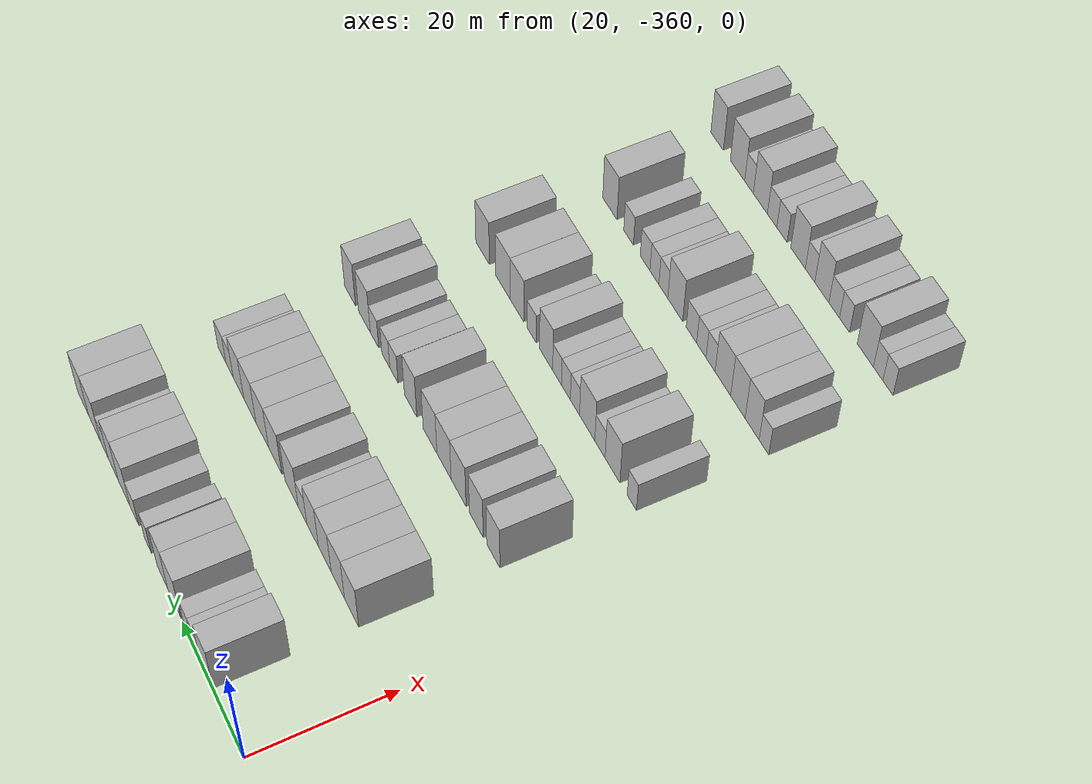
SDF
<sdf version="1.6">
 <world name="default">
  <model name="building_1">
   <static>1</static>
   <pose>25.0000 -347.9719 0 0.000000 0.000000 0.000000</pose>
   <link name="link">
    <pose>0 0 4.50 0 0 0</pose>
    <collision name="collision"><geometry><box><size>10.0000 4.0563 9.0000</size></box></geometry></collision>
    <visual name="visual">
     <cast_shadows>0</cast_shadows>
     <geometry><box><size>10.0000 4.0563 9.0000</size></box></geometry>
     <material>
      <script>
       <uri>model://HANNAS_wall/materials/scripts</uri>
       <uri>model://HANNAS_wall/materials/textures</uri>
       <name>vrc/HANNAS_wall</name>
      </script>
     </material>
    </visual>
   </link>
  </model>
  <model name="building_2">
   <static>1</static>
   <pose>25.0000 -344.5321 0 0.000000 0.000000 0.000000</pose>
   <link name="link">
    <pose>0 0 3.00 0 0 0</pose>
    <collision name="collision"><geometry><box><size>10.0000 2.8232 6.0000</size></box></geometry></collision>
    <visual name="visual">
     <cast_shadows>0</cast_shadows>
     <geometry><box><size>10.0000 2.8232 6.0000</size></box></geometry>
     <material>
      <script>
       <uri>model://HANNAS_wall/materials/scripts</uri>
       <uri>model://HANNAS_wall/materials/textures</uri>
       <name>vrc/HANNAS_wall</name>
      </script>
     </material>
    </visual>
   </link>
  </model>
  <model name="building_3">
   <static>1</static>
   <pose>25.0000 -341.8003 0 0.000000 0.000000 0.000000</pose>
   <link name="link">
    <pose>0 0 3.00 0 0 0</pose>
    <collision name="collision"><geometry><box><size>10.0000 2.6404 6.0000</size></box></geometry></collision>
    <visual name="visual">
     <cast_shadows>0</cast_shadows>
     <geometry><box><size>10.0000 2.6404 6.0000</size></box></geometry>
     <material>
      <script>
       <uri>model://HANNAS_wall/materials/scripts</uri>
       <uri>model://HANNAS_wall/materials/textures</uri>
       <name>vrc/HANNAS_wall</name>
      </script>
     </material>
    </visual>
   </link>
  </model>
  <model name="building_4">
   <static>1</static>
   <pose>25.0000 -337.2499 0 0.000000 0.000000 0.000000</pose>
   <link name="link">
    <pose>0 0 4.50 0 0 0</pose>
    <collision name="collision"><geometry><box><size>10.0000 4.4603 9.0000</size></box></geometry></collision>
    <visual name="visual">
     <cast_shadows>0</cast_shadows>
     <geometry><box><size>10.0000 4.4603 9.0000</size></box></geometry>
     <material>
      <script>
       <uri>model://HANNAS_wall/materials/scripts</uri>
       <uri>model://HANNAS_wall/materials/textures</uri>
       <name>vrc/HANNAS_wall</name>
      </script>
     </material>
    </visual>
   </link>
  </model>
  <model name="building_5">
   <static>1</static>
   <pose>25.0000 -333.1671 0 0.000000 0.000000 0.000000</pose>
   <link name="link">
    <pose>0 0 4.50 0 0 0</pose>
    <collision name="collision"><geometry><box><size>10.0000 3.7053 9.0000</size></box></geometry></collision>
    <visual name="visual">
     <cast_shadows>0</cast_shadows>
     <geometry><box><size>10.0000 3.7053 9.0000</size></box></geometry>
     <material>
      <script>
       <uri>model://HANNAS_wall/materials/scripts</uri>
       <uri>model://HANNAS_wall/materials/textures</uri>
       <name>vrc/HANNAS_wall</name>
      </script>
     </material>
    </visual>
   </link>
  </model>
  <model name="building_6">
   <static>1</static>
   <pose>25.0000 -328.1081 0 0.000000 0.000000 0.000000</pose>
   <link name="link">
    <pose>0 0 3.00 0 0 0</pose>
    <collision name="collision"><geometry><box><size>10.0000 2.4127 6.0000</size></box></geometry></collision>
    <visual name="visual">
     <cast_shadows>0</cast_shadows>
     <geometry><box><size>10.0000 2.4127 6.0000</size></box></geometry>
     <material>
      <script>
       <uri>model://HANNAS_wall/materials/scripts</uri>
       <uri>model://HANNAS_wall/materials/textures</uri>
       <name>vrc/HANNAS_wall</name>
      </script>
     </material>
    </visual>
   </link>
  </model>
  <model name="building_7">
   <static>1</static>
   <pose>25.0000 -323.4152 0 0.000000 0.000000 0.000000</pose>
   <link name="link">
    <pose>0 0 3.00 0 0 0</pose>
    <collision name="collision"><geometry><box><size>10.0000 2.9729 6.0000</size></box></geometry></collision>
    <visual name="visual">
     <cast_shadows>0</cast_shadows>
     <geometry><box><size>10.0000 2.9729 6.0000</size></box></geometry>
     <material>
      <script>
       <uri>model://HANNAS_wall/materials/scripts</uri>
       <uri>model://HANNAS_wall/materials/textures</uri>
       <name>vrc/HANNAS_wall</name>
      </script>
     </material>
    </visual>
   </link>
  </model>
  <model name="building_8">
   <static>1</static>
   <pose>25.0000 -319.7650 0 0.000000 0.000000 0.000000</pose>
   <link name="link">
    <pose>0 0 4.50 0 0 0</pose>
    <collision name="collision"><geometry><box><size>10.0000 4.3275 9.0000</size></box></geometry></collision>
    <visual name="visual">
     <cast_shadows>0</cast_shadows>
     <geometry><box><size>10.0000 4.3275 9.0000</size></box></geometry>
     <material>
      <script>
       <uri>model://HANNAS_wall/materials/scripts</uri>
       <uri>model://HANNAS_wall/materials/textures</uri>
       <name>vrc/HANNAS_wall</name>
      </script>
     </material>
    </visual>
   </link>
  </model>
  <model name="building_9">
   <static>1</static>
   <pose>25.0000 -315.7878 0 0.000000 0.000000 0.000000</pose>
   <link name="link">
    <pose>0 0 4.50 0 0 0</pose>
    <collision name="collision"><geometry><box><size>10.0000 3.6268 9.0000</size></box></geometry></collision>
    <visual name="visual">
     <cast_shadows>0</cast_shadows>
     <geometry><box><size>10.0000 3.6268 9.0000</size></box></geometry>
     <material>
      <script>
       <uri>model://HANNAS_wall/materials/scripts</uri>
       <uri>model://HANNAS_wall/materials/textures</uri>
       <name>vrc/HANNAS_wall</name>
      </script>
     </material>
    </visual>
   </link>
  </model>
  <model name="building_10">
   <static>1</static>
   <pose>25.0000 -312.5490 0 0.000000 0.000000 0.000000</pose>
   <link name="link">
    <pose>0 0 3.00 0 0 0</pose>
    <collision name="collision"><geometry><box><size>10.0000 2.8508 6.0000</size></box></geometry></collision>
    <visual name="visual">
     <cast_shadows>0</cast_shadows>
     <geometry><box><size>10.0000 2.8508 6.0000</size></box></geometry>
     <material>
      <script>
       <uri>model://HANNAS_wall/materials/scripts</uri>
       <uri>model://HANNAS_wall/materials/textures</uri>
       <name>vrc/HANNAS_wall</name>
      </script>
     </material>
    </visual>
   </link>
  </model>
  <model name="building_11">
   <static>1</static>
   <pose>25.0000 -308.8738 0 0.000000 0.000000 0.000000</pose>
   <link name="link">
    <pose>0 0 4.50 0 0 0</pose>
    <collision name="collision"><geometry><box><size>10.0000 4.4997 9.0000</size></box></geometry></collision>
    <visual name="visual">
     <cast_shadows>0</cast_shadows>
     <geometry><box><size>10.0000 4.4997 9.0000</size></box></geometry>
     <material>
      <script>
       <uri>model://HANNAS_wall/materials/scripts</uri>
       <uri>model://HANNAS_wall/materials/textures</uri>
       <name>vrc/HANNAS_wall</name>
      </script>
     </material>
    </visual>
   </link>
  </model>
  <model name="building_12">
   <static>1</static>
   <pose>25.0000 -304.5123 0 0.000000 0.000000 0.000000</pose>
   <link name="link">
    <pose>0 0 4.50 0 0 0</pose>
    <collision name="collision"><geometry><box><size>10.0000 4.2233 9.0000</size></box></geometry></collision>
    <visual name="visual">
     <cast_shadows>0</cast_shadows>
     <geometry><box><size>10.0000 4.2233 9.0000</size></box></geometry>
     <material>
      <script>
       <uri>model://HANNAS_wall/materials/scripts</uri>
       <uri>model://HANNAS_wall/materials/textures</uri>
       <name>vrc/HANNAS_wall</name>
      </script>
     </material>
    </visual>
   </link>
  </model>
  <model name="building_175">
   <static>1</static>
   <pose>44.0000 -347.8196 0 0.000000 0.000000 0.000000</pose>
   <link name="link">
    <pose>0 0 4.50 0 0 0</pose>
    <collision name="collision"><geometry><box><size>10.0000 4.3608 9.0000</size></box></geometry></collision>
    <visual name="visual">
     <cast_shadows>0</cast_shadows>
     <geometry><box><size>10.0000 4.3608 9.0000</size></box></geometry>
     <material>
      <script>
       <uri>model://HANNAS_wall/materials/scripts</uri>
       <uri>model://HANNAS_wall/materials/textures</uri>
       <name>vrc/HANNAS_wall</name>
      </script>
     </material>
    </visual>
   </link>
  </model>
  <model name="building_176">
   <static>1</static>
   <pose>44.0000 -343.5840 0 0.000000 0.000000 0.000000</pose>
   <link name="link">
    <pose>0 0 4.50 0 0 0</pose>
    <collision name="collision"><geometry><box><size>10.0000 4.1103 9.0000</size></box></geometry></collision>
    <visual name="visual">
     <cast_shadows>0</cast_shadows>
     <geometry><box><size>10.0000 4.1103 9.0000</size></box></geometry>
     <material>
      <script>
       <uri>model://HANNAS_wall/materials/scripts</uri>
       <uri>model://HANNAS_wall/materials/textures</uri>
       <name>vrc/HANNAS_wall</name>
      </script>
     </material>
    </visual>
   </link>
  </model>
  <model name="building_177">
   <static>1</static>
   <pose>44.0000 -339.5308 0 0.000000 0.000000 0.000000</pose>
   <link name="link">
    <pose>0 0 4.50 0 0 0</pose>
    <collision name="collision"><geometry><box><size>10.0000 3.9963 9.0000</size></box></geometry></collision>
    <visual name="visual">
     <cast_shadows>0</cast_shadows>
     <geometry><box><size>10.0000 3.9963 9.0000</size></box></geometry>
     <material>
      <script>
       <uri>model://HANNAS_wall/materials/scripts</uri>
       <uri>model://HANNAS_wall/materials/textures</uri>
       <name>vrc/HANNAS_wall</name>
      </script>
     </material>
    </visual>
   </link>
  </model>
  <model name="building_178">
   <static>1</static>
   <pose>44.0000 -335.6657 0 0.000000 0.000000 0.000000</pose>
   <link name="link">
    <pose>0 0 4.50 0 0 0</pose>
    <collision name="collision"><geometry><box><size>10.0000 3.7338 9.0000</size></box></geometry></collision>
    <visual name="visual">
     <cast_shadows>0</cast_shadows>
     <geometry><box><size>10.0000 3.7338 9.0000</size></box></geometry>
     <material>
      <script>
       <uri>model://HANNAS_wall/materials/scripts</uri>
       <uri>model://HANNAS_wall/materials/textures</uri>
       <name>vrc/HANNAS_wall</name>
      </script>
     </material>
    </visual>
   </link>
  </model>
  <model name="building_179">
   <static>1</static>
   <pose>44.0000 -332.4014 0 0.000000 0.000000 0.000000</pose>
   <link name="link">
    <pose>0 0 3.00 0 0 0</pose>
    <collision name="collision"><geometry><box><size>10.0000 2.7949 6.0000</size></box></geometry></collision>
    <visual name="visual">
     <cast_shadows>0</cast_shadows>
     <geometry><box><size>10.0000 2.7949 6.0000</size></box></geometry>
     <material>
      <script>
       <uri>model://HANNAS_wall/materials/scripts</uri>
       <uri>model://HANNAS_wall/materials/textures</uri>
       <name>vrc/HANNAS_wall</name>
      </script>
     </material>
    </visual>
   </link>
  </model>
  <model name="building_180">
   <static>1</static>
   <pose>44.0000 -328.8375 0 0.000000 0.000000 0.000000</pose>
   <link name="link">
    <pose>0 0 4.50 0 0 0</pose>
    <collision name="collision"><geometry><box><size>10.0000 4.3329 9.0000</size></box></geometry></collision>
    <visual name="visual">
     <cast_shadows>0</cast_shadows>
     <geometry><box><size>10.0000 4.3329 9.0000</size></box></geometry>
     <material>
      <script>
       <uri>model://HANNAS_wall/materials/scripts</uri>
       <uri>model://HANNAS_wall/materials/textures</uri>
       <name>vrc/HANNAS_wall</name>
      </script>
     </material>
    </visual>
   </link>
  </model>
  <model name="building_181">
   <static>1</static>
   <pose>44.0000 -323.4574 0 0.000000 0.000000 0.000000</pose>
   <link name="link">
    <pose>0 0 4.50 0 0 0</pose>
    <collision name="collision"><geometry><box><size>10.0000 4.4273 9.0000</size></box></geometry></collision>
    <visual name="visual">
     <cast_shadows>0</cast_shadows>
     <geometry><box><size>10.0000 4.4273 9.0000</size></box></geometry>
     <material>
      <script>
       <uri>model://HANNAS_wall/materials/scripts</uri>
       <uri>model://HANNAS_wall/materials/textures</uri>
       <name>vrc/HANNAS_wall</name>
      </script>
     </material>
    </visual>
   </link>
  </model>
  <model name="building_182">
   <static>1</static>
   <pose>44.0000 -319.1337 0 0.000000 0.000000 0.000000</pose>
   <link name="link">
    <pose>0 0 4.50 0 0 0</pose>
    <collision name="collision"><geometry><box><size>10.0000 4.2200 9.0000</size></box></geometry></collision>
    <visual name="visual">
     <cast_shadows>0</cast_shadows>
     <geometry><box><size>10.0000 4.2200 9.0000</size></box></geometry>
     <material>
      <script>
       <uri>model://HANNAS_wall/materials/scripts</uri>
       <uri>model://HANNAS_wall/materials/textures</uri>
       <name>vrc/HANNAS_wall</name>
      </script>
     </material>
    </visual>
   </link>
  </model>
  <model name="building_183">
   <static>1</static>
   <pose>44.0000 -314.9364 0 0.000000 0.000000 0.000000</pose>
   <link name="link">
    <pose>0 0 4.50 0 0 0</pose>
    <collision name="collision"><geometry><box><size>10.0000 4.1746 9.0000</size></box></geometry></collision>
    <visual name="visual">
     <cast_shadows>0</cast_shadows>
     <geometry><box><size>10.0000 4.1746 9.0000</size></box></geometry>
     <material>
      <script>
       <uri>model://HANNAS_wall/materials/scripts</uri>
       <uri>model://HANNAS_wall/materials/textures</uri>
       <name>vrc/HANNAS_wall</name>
      </script>
     </material>
    </visual>
   </link>
  </model>
  <model name="building_184">
   <static>1</static>
   <pose>44.0000 -311.0115 0 0.000000 0.000000 0.000000</pose>
   <link name="link">
    <pose>0 0 4.50 0 0 0</pose>
    <collision name="collision"><geometry><box><size>10.0000 3.6751 9.0000</size></box></geometry></collision>
    <visual name="visual">
     <cast_shadows>0</cast_shadows>
     <geometry><box><size>10.0000 3.6751 9.0000</size></box></geometry>
     <material>
      <script>
       <uri>model://HANNAS_wall/materials/scripts</uri>
       <uri>model://HANNAS_wall/materials/textures</uri>
       <name>vrc/HANNAS_wall</name>
      </script>
     </material>
    </visual>
   </link>
  </model>
  <model name="building_185">
   <static>1</static>
   <pose>44.0000 -307.9060 0 0.000000 0.000000 0.000000</pose>
   <link name="link">
    <pose>0 0 3.00 0 0 0</pose>
    <collision name="collision"><geometry><box><size>10.0000 2.5360 6.0000</size></box></geometry></collision>
    <visual name="visual">
     <cast_shadows>0</cast_shadows>
     <geometry><box><size>10.0000 2.5360 6.0000</size></box></geometry>
     <material>
      <script>
       <uri>model://HANNAS_wall/materials/scripts</uri>
       <uri>model://HANNAS_wall/materials/textures</uri>
       <name>vrc/HANNAS_wall</name>
      </script>
     </material>
    </visual>
   </link>
  </model>
  <model name="building_186">
   <static>1</static>
   <pose>44.0000 -305.2143 0 0.000000 0.000000 0.000000</pose>
   <link name="link">
    <pose>0 0 3.00 0 0 0</pose>
    <collision name="collision"><geometry><box><size>10.0000 2.8473 6.0000</size></box></geometry></collision>
    <visual name="visual">
     <cast_shadows>0</cast_shadows>
     <geometry><box><size>10.0000 2.8473 6.0000</size></box></geometry>
     <material>
      <script>
       <uri>model://HANNAS_wall/materials/scripts</uri>
       <uri>model://HANNAS_wall/materials/textures</uri>
       <name>vrc/HANNAS_wall</name>
      </script>
     </material>
    </visual>
   </link>
  </model>
  <model name="building_343">
   <static>1</static>
   <pose>63.0000 -348.0949 0 0.000000 0.000000 0.000000</pose>
   <link name="link">
    <pose>0 0 4.50 0 0 0</pose>
    <collision name="collision"><geometry><box><size>10.0000 3.8103 9.0000</size></box></geometry></collision>
    <visual name="visual">
     <cast_shadows>0</cast_shadows>
     <geometry><box><size>10.0000 3.8103 9.0000</size></box></geometry>
     <material>
      <script>
       <uri>model://HANNAS_wall/materials/scripts</uri>
       <uri>model://HANNAS_wall/materials/textures</uri>
       <name>vrc/HANNAS_wall</name>
      </script>
     </material>
    </visual>
   </link>
  </model>
  <model name="building_344">
   <static>1</static>
   <pose>63.0000 -343.1694 0 0.000000 0.000000 0.000000</pose>
   <link name="link">
    <pose>0 0 4.50 0 0 0</pose>
    <collision name="collision"><geometry><box><size>10.0000 4.0407 9.0000</size></box></geometry></collision>
    <visual name="visual">
     <cast_shadows>0</cast_shadows>
     <geometry><box><size>10.0000 4.0407 9.0000</size></box></geometry>
     <material>
      <script>
       <uri>model://HANNAS_wall/materials/scripts</uri>
       <uri>model://HANNAS_wall/materials/textures</uri>
       <name>vrc/HANNAS_wall</name>
      </script>
     </material>
    </visual>
   </link>
  </model>
  <model name="building_345">
   <static>1</static>
   <pose>63.0000 -337.9200 0 0.000000 0.000000 0.000000</pose>
   <link name="link">
    <pose>0 0 4.50 0 0 0</pose>
    <collision name="collision"><geometry><box><size>10.0000 4.4583 9.0000</size></box></geometry></collision>
    <visual name="visual">
     <cast_shadows>0</cast_shadows>
     <geometry><box><size>10.0000 4.4583 9.0000</size></box></geometry>
     <material>
      <script>
       <uri>model://HANNAS_wall/materials/scripts</uri>
       <uri>model://HANNAS_wall/materials/textures</uri>
       <name>vrc/HANNAS_wall</name>
      </script>
     </material>
    </visual>
   </link>
  </model>
  <model name="building_346">
   <static>1</static>
   <pose>63.0000 -333.5298 0 0.000000 0.000000 0.000000</pose>
   <link name="link">
    <pose>0 0 4.50 0 0 0</pose>
    <collision name="collision"><geometry><box><size>10.0000 4.3220 9.0000</size></box></geometry></collision>
    <visual name="visual">
     <cast_shadows>0</cast_shadows>
     <geometry><box><size>10.0000 4.3220 9.0000</size></box></geometry>
     <material>
      <script>
       <uri>model://HANNAS_wall/materials/scripts</uri>
       <uri>model://HANNAS_wall/materials/textures</uri>
       <name>vrc/HANNAS_wall</name>
      </script>
     </material>
    </visual>
   </link>
  </model>
  <model name="building_347">
   <static>1</static>
   <pose>63.0000 -329.2677 0 0.000000 0.000000 0.000000</pose>
   <link name="link">
    <pose>0 0 4.50 0 0 0</pose>
    <collision name="collision"><geometry><box><size>10.0000 4.2022 9.0000</size></box></geometry></collision>
    <visual name="visual">
     <cast_shadows>0</cast_shadows>
     <geometry><box><size>10.0000 4.2022 9.0000</size></box></geometry>
     <material>
      <script>
       <uri>model://HANNAS_wall/materials/scripts</uri>
       <uri>model://HANNAS_wall/materials/textures</uri>
       <name>vrc/HANNAS_wall</name>
      </script>
     </material>
    </visual>
   </link>
  </model>
  <model name="building_348">
   <static>1</static>
   <pose>63.0000 -323.2186 0 0.000000 0.000000 0.000000</pose>
   <link name="link">
    <pose>0 0 4.50 0 0 0</pose>
    <collision name="collision"><geometry><box><size>10.0000 3.8960 9.0000</size></box></geometry></collision>
    <visual name="visual">
     <cast_shadows>0</cast_shadows>
     <geometry><box><size>10.0000 3.8960 9.0000</size></box></geometry>
     <material>
      <script>
       <uri>model://HANNAS_wall/materials/scripts</uri>
       <uri>model://HANNAS_wall/materials/textures</uri>
       <name>vrc/HANNAS_wall</name>
      </script>
     </material>
    </visual>
   </link>
  </model>
  <model name="building_349">
   <static>1</static>
   <pose>63.0000 -317.9427 0 0.000000 0.000000 0.000000</pose>
   <link name="link">
    <pose>0 0 3.00 0 0 0</pose>
    <collision name="collision"><geometry><box><size>10.0000 2.6558 6.0000</size></box></geometry></collision>
    <visual name="visual">
     <cast_shadows>0</cast_shadows>
     <geometry><box><size>10.0000 2.6558 6.0000</size></box></geometry>
     <material>
      <script>
       <uri>model://HANNAS_wall/materials/scripts</uri>
       <uri>model://HANNAS_wall/materials/textures</uri>
       <name>vrc/HANNAS_wall</name>
      </script>
     </material>
    </visual>
   </link>
  </model>
  <model name="building_350">
   <static>1</static>
   <pose>63.0000 -315.3383 0 0.000000 0.000000 0.000000</pose>
   <link name="link">
    <pose>0 0 3.00 0 0 0</pose>
    <collision name="collision"><geometry><box><size>10.0000 2.5530 6.0000</size></box></geometry></collision>
    <visual name="visual">
     <cast_shadows>0</cast_shadows>
     <geometry><box><size>10.0000 2.5530 6.0000</size></box></geometry>
     <material>
      <script>
       <uri>model://HANNAS_wall/materials/scripts</uri>
       <uri>model://HANNAS_wall/materials/textures</uri>
       <name>vrc/HANNAS_wall</name>
      </script>
     </material>
    </visual>
   </link>
  </model>
  <model name="building_351">
   <static>1</static>
   <pose>63.0000 -311.6912 0 0.000000 0.000000 0.000000</pose>
   <link name="link">
    <pose>0 0 3.00 0 0 0</pose>
    <collision name="collision"><geometry><box><size>10.0000 2.7412 6.0000</size></box></geometry></collision>
    <visual name="visual">
     <cast_shadows>0</cast_shadows>
     <geometry><box><size>10.0000 2.7412 6.0000</size></box></geometry>
     <material>
      <script>
       <uri>model://HANNAS_wall/materials/scripts</uri>
       <uri>model://HANNAS_wall/materials/textures</uri>
       <name>vrc/HANNAS_wall</name>
      </script>
     </material>
    </visual>
   </link>
  </model>
  <model name="building_352">
   <static>1</static>
   <pose>63.0000 -308.3796 0 0.000000 0.000000 0.000000</pose>
   <link name="link">
    <pose>0 0 4.50 0 0 0</pose>
    <collision name="collision"><geometry><box><size>10.0000 3.8820 9.0000</size></box></geometry></collision>
    <visual name="visual">
     <cast_shadows>0</cast_shadows>
     <geometry><box><size>10.0000 3.8820 9.0000</size></box></geometry>
     <material>
      <script>
       <uri>model://HANNAS_wall/materials/scripts</uri>
       <uri>model://HANNAS_wall/materials/textures</uri>
       <name>vrc/HANNAS_wall</name>
      </script>
     </material>
    </visual>
   </link>
  </model>
  <model name="building_353">
   <static>1</static>
   <pose>63.0000 -303.6119 0 0.000000 0.000000 0.000000</pose>
   <link name="link">
    <pose>0 0 4.50 0 0 0</pose>
    <collision name="collision"><geometry><box><size>10.0000 3.6534 9.0000</size></box></geometry></collision>
    <visual name="visual">
     <cast_shadows>0</cast_shadows>
     <geometry><box><size>10.0000 3.6534 9.0000</size></box></geometry>
     <material>
      <script>
       <uri>model://HANNAS_wall/materials/scripts</uri>
       <uri>model://HANNAS_wall/materials/textures</uri>
       <name>vrc/HANNAS_wall</name>
      </script>
     </material>
    </visual>
   </link>
  </model>
  <model name="building_512">
   <static>1</static>
   <pose>82.0000 -348.7292 0 0.000000 0.000000 0.000000</pose>
   <link name="link">
    <pose>0 0 3.00 0 0 0</pose>
    <collision name="collision"><geometry><box><size>10.0000 2.5415 6.0000</size></box></geometry></collision>
    <visual name="visual">
     <cast_shadows>0</cast_shadows>
     <geometry><box><size>10.0000 2.5415 6.0000</size></box></geometry>
     <material>
      <script>
       <uri>model://HANNAS_wall/materials/scripts</uri>
       <uri>model://HANNAS_wall/materials/textures</uri>
       <name>vrc/HANNAS_wall</name>
      </script>
     </material>
    </visual>
   </link>
  </model>
  <model name="building_513">
   <static>1</static>
   <pose>82.0000 -343.3906 0 0.000000 0.000000 0.000000</pose>
   <link name="link">
    <pose>0 0 4.50 0 0 0</pose>
    <collision name="collision"><geometry><box><size>10.0000 4.1357 9.0000</size></box></geometry></collision>
    <visual name="visual">
     <cast_shadows>0</cast_shadows>
     <geometry><box><size>10.0000 4.1357 9.0000</size></box></geometry>
     <material>
      <script>
       <uri>model://HANNAS_wall/materials/scripts</uri>
       <uri>model://HANNAS_wall/materials/textures</uri>
       <name>vrc/HANNAS_wall</name>
      </script>
     </material>
    </visual>
   </link>
  </model>
  <model name="building_514">
   <static>1</static>
   <pose>82.0000 -339.8848 0 0.000000 0.000000 0.000000</pose>
   <link name="link">
    <pose>0 0 3.00 0 0 0</pose>
    <collision name="collision"><geometry><box><size>10.0000 2.8760 6.0000</size></box></geometry></collision>
    <visual name="visual">
     <cast_shadows>0</cast_shadows>
     <geometry><box><size>10.0000 2.8760 6.0000</size></box></geometry>
     <material>
      <script>
       <uri>model://HANNAS_wall/materials/scripts</uri>
       <uri>model://HANNAS_wall/materials/textures</uri>
       <name>vrc/HANNAS_wall</name>
      </script>
     </material>
    </visual>
   </link>
  </model>
  <model name="building_515">
   <static>1</static>
   <pose>82.0000 -336.2471 0 0.000000 0.000000 0.000000</pose>
   <link name="link">
    <pose>0 0 4.50 0 0 0</pose>
    <collision name="collision"><geometry><box><size>10.0000 4.3995 9.0000</size></box></geometry></collision>
    <visual name="visual">
     <cast_shadows>0</cast_shadows>
     <geometry><box><size>10.0000 4.3995 9.0000</size></box></geometry>
     <material>
      <script>
       <uri>model://HANNAS_wall/materials/scripts</uri>
       <uri>model://HANNAS_wall/materials/textures</uri>
       <name>vrc/HANNAS_wall</name>
      </script>
     </material>
    </visual>
   </link>
  </model>
  <model name="building_516">
   <static>1</static>
   <pose>82.0000 -332.7282 0 0.000000 0.000000 0.000000</pose>
   <link name="link">
    <pose>0 0 3.00 0 0 0</pose>
    <collision name="collision"><geometry><box><size>10.0000 2.6383 6.0000</size></box></geometry></collision>
    <visual name="visual">
     <cast_shadows>0</cast_shadows>
     <geometry><box><size>10.0000 2.6383 6.0000</size></box></geometry>
     <material>
      <script>
       <uri>model://HANNAS_wall/materials/scripts</uri>
       <uri>model://HANNAS_wall/materials/textures</uri>
       <name>vrc/HANNAS_wall</name>
      </script>
     </material>
    </visual>
   </link>
  </model>
  <model name="building_517">
   <static>1</static>
   <pose>82.0000 -330.1069 0 0.000000 0.000000 0.000000</pose>
   <link name="link">
    <pose>0 0 3.00 0 0 0</pose>
    <collision name="collision"><geometry><box><size>10.0000 2.6044 6.0000</size></box></geometry></collision>
    <visual name="visual">
     <cast_shadows>0</cast_shadows>
     <geometry><box><size>10.0000 2.6044 6.0000</size></box></geometry>
     <material>
      <script>
       <uri>model://HANNAS_wall/materials/scripts</uri>
       <uri>model://HANNAS_wall/materials/textures</uri>
       <name>vrc/HANNAS_wall</name>
      </script>
     </material>
    </visual>
   </link>
  </model>
  <model name="building_518">
   <static>1</static>
   <pose>82.0000 -327.5131 0 0.000000 0.000000 0.000000</pose>
   <link name="link">
    <pose>0 0 3.00 0 0 0</pose>
    <collision name="collision"><geometry><box><size>10.0000 2.5832 6.0000</size></box></geometry></collision>
    <visual name="visual">
     <cast_shadows>0</cast_shadows>
     <geometry><box><size>10.0000 2.5832 6.0000</size></box></geometry>
     <material>
      <script>
       <uri>model://HANNAS_wall/materials/scripts</uri>
       <uri>model://HANNAS_wall/materials/textures</uri>
       <name>vrc/HANNAS_wall</name>
      </script>
     </material>
    </visual>
   </link>
  </model>
  <model name="building_519">
   <static>1</static>
   <pose>82.0000 -324.2697 0 0.000000 0.000000 0.000000</pose>
   <link name="link">
    <pose>0 0 4.50 0 0 0</pose>
    <collision name="collision"><geometry><box><size>10.0000 3.9036 9.0000</size></box></geometry></collision>
    <visual name="visual">
     <cast_shadows>0</cast_shadows>
     <geometry><box><size>10.0000 3.9036 9.0000</size></box></geometry>
     <material>
      <script>
       <uri>model://HANNAS_wall/materials/scripts</uri>
       <uri>model://HANNAS_wall/materials/textures</uri>
       <name>vrc/HANNAS_wall</name>
      </script>
     </material>
    </visual>
   </link>
  </model>
  <model name="building_520">
   <static>1</static>
   <pose>82.0000 -319.9363 0 0.000000 0.000000 0.000000</pose>
   <link name="link">
    <pose>0 0 3.00 0 0 0</pose>
    <collision name="collision"><geometry><box><size>10.0000 2.7633 6.0000</size></box></geometry></collision>
    <visual name="visual">
     <cast_shadows>0</cast_shadows>
     <geometry><box><size>10.0000 2.7633 6.0000</size></box></geometry>
     <material>
      <script>
       <uri>model://HANNAS_wall/materials/scripts</uri>
       <uri>model://HANNAS_wall/materials/textures</uri>
       <name>vrc/HANNAS_wall</name>
      </script>
     </material>
    </visual>
   </link>
  </model>
  <model name="building_521">
   <static>1</static>
   <pose>82.0000 -315.4998 0 0.000000 0.000000 0.000000</pose>
   <link name="link">
    <pose>0 0 4.50 0 0 0</pose>
    <collision name="collision"><geometry><box><size>10.0000 4.1097 9.0000</size></box></geometry></collision>
    <visual name="visual">
     <cast_shadows>0</cast_shadows>
     <geometry><box><size>10.0000 4.1097 9.0000</size></box></geometry>
     <material>
      <script>
       <uri>model://HANNAS_wall/materials/scripts</uri>
       <uri>model://HANNAS_wall/materials/textures</uri>
       <name>vrc/HANNAS_wall</name>
      </script>
     </material>
    </visual>
   </link>
  </model>
  <model name="building_522">
   <static>1</static>
   <pose>82.0000 -311.2077 0 0.000000 0.000000 0.000000</pose>
   <link name="link">
    <pose>0 0 4.50 0 0 0</pose>
    <collision name="collision"><geometry><box><size>10.0000 4.4744 9.0000</size></box></geometry></collision>
    <visual name="visual">
     <cast_shadows>0</cast_shadows>
     <geometry><box><size>10.0000 4.4744 9.0000</size></box></geometry>
     <material>
      <script>
       <uri>model://HANNAS_wall/materials/scripts</uri>
       <uri>model://HANNAS_wall/materials/textures</uri>
       <name>vrc/HANNAS_wall</name>
      </script>
     </material>
    </visual>
   </link>
  </model>
  <model name="building_523">
   <static>1</static>
   <pose>82.0000 -304.8241 0 0.000000 0.000000 0.000000</pose>
   <link name="link">
    <pose>0 0 4.50 0 0 0</pose>
    <collision name="collision"><geometry><box><size>10.0000 4.2927 9.0000</size></box></geometry></collision>
    <visual name="visual">
     <cast_shadows>0</cast_shadows>
     <geometry><box><size>10.0000 4.2927 9.0000</size></box></geometry>
     <material>
      <script>
       <uri>model://HANNAS_wall/materials/scripts</uri>
       <uri>model://HANNAS_wall/materials/textures</uri>
       <name>vrc/HANNAS_wall</name>
      </script>
     </material>
    </visual>
   </link>
  </model>
  <model name="building_681">
   <static>1</static>
   <pose>101.0000 -348.7412 0 0.000000 0.000000 0.000000</pose>
   <link name="link">
    <pose>0 0 3.00 0 0 0</pose>
    <collision name="collision"><geometry><box><size>10.0000 2.5175 6.0000</size></box></geometry></collision>
    <visual name="visual">
     <cast_shadows>0</cast_shadows>
     <geometry><box><size>10.0000 2.5175 6.0000</size></box></geometry>
     <material>
      <script>
       <uri>model://HANNAS_wall/materials/scripts</uri>
       <uri>model://HANNAS_wall/materials/textures</uri>
       <name>vrc/HANNAS_wall</name>
      </script>
     </material>
    </visual>
   </link>
  </model>
  <model name="building_682">
   <static>1</static>
   <pose>101.0000 -345.6214 0 0.000000 0.000000 0.000000</pose>
   <link name="link">
    <pose>0 0 4.50 0 0 0</pose>
    <collision name="collision"><geometry><box><size>10.0000 3.7221 9.0000</size></box></geometry></collision>
    <visual name="visual">
     <cast_shadows>0</cast_shadows>
     <geometry><box><size>10.0000 3.7221 9.0000</size></box></geometry>
     <material>
      <script>
       <uri>model://HANNAS_wall/materials/scripts</uri>
       <uri>model://HANNAS_wall/materials/textures</uri>
       <name>vrc/HANNAS_wall</name>
      </script>
     </material>
    </visual>
   </link>
  </model>
  <model name="building_683">
   <static>1</static>
   <pose>101.0000 -341.8268 0 0.000000 0.000000 0.000000</pose>
   <link name="link">
    <pose>0 0 4.50 0 0 0</pose>
    <collision name="collision"><geometry><box><size>10.0000 3.8671 9.0000</size></box></geometry></collision>
    <visual name="visual">
     <cast_shadows>0</cast_shadows>
     <geometry><box><size>10.0000 3.8671 9.0000</size></box></geometry>
     <material>
      <script>
       <uri>model://HANNAS_wall/materials/scripts</uri>
       <uri>model://HANNAS_wall/materials/textures</uri>
       <name>vrc/HANNAS_wall</name>
      </script>
     </material>
    </visual>
   </link>
  </model>
  <model name="building_684">
   <static>1</static>
   <pose>101.0000 -337.7778 0 0.000000 0.000000 0.000000</pose>
   <link name="link">
    <pose>0 0 4.50 0 0 0</pose>
    <collision name="collision"><geometry><box><size>10.0000 4.2309 9.0000</size></box></geometry></collision>
    <visual name="visual">
     <cast_shadows>0</cast_shadows>
     <geometry><box><size>10.0000 4.2309 9.0000</size></box></geometry>
     <material>
      <script>
       <uri>model://HANNAS_wall/materials/scripts</uri>
       <uri>model://HANNAS_wall/materials/textures</uri>
       <name>vrc/HANNAS_wall</name>
      </script>
     </material>
    </visual>
   </link>
  </model>
  <model name="building_685">
   <static>1</static>
   <pose>101.0000 -334.4196 0 0.000000 0.000000 0.000000</pose>
   <link name="link">
    <pose>0 0 3.00 0 0 0</pose>
    <collision name="collision"><geometry><box><size>10.0000 2.4855 6.0000</size></box></geometry></collision>
    <visual name="visual">
     <cast_shadows>0</cast_shadows>
     <geometry><box><size>10.0000 2.4855 6.0000</size></box></geometry>
     <material>
      <script>
       <uri>model://HANNAS_wall/materials/scripts</uri>
       <uri>model://HANNAS_wall/materials/textures</uri>
       <name>vrc/HANNAS_wall</name>
      </script>
     </material>
    </visual>
   </link>
  </model>
  <model name="building_686">
   <static>1</static>
   <pose>101.0000 -331.8754 0 0.000000 0.000000 0.000000</pose>
   <link name="link">
    <pose>0 0 3.00 0 0 0</pose>
    <collision name="collision"><geometry><box><size>10.0000 2.6029 6.0000</size></box></geometry></collision>
    <visual name="visual">
     <cast_shadows>0</cast_shadows>
     <geometry><box><size>10.0000 2.6029 6.0000</size></box></geometry>
     <material>
      <script>
       <uri>model://HANNAS_wall/materials/scripts</uri>
       <uri>model://HANNAS_wall/materials/textures</uri>
       <name>vrc/HANNAS_wall</name>
      </script>
     </material>
    </visual>
   </link>
  </model>
  <model name="building_687">
   <static>1</static>
   <pose>101.0000 -329.1189 0 0.000000 0.000000 0.000000</pose>
   <link name="link">
    <pose>0 0 3.00 0 0 0</pose>
    <collision name="collision"><geometry><box><size>10.0000 2.9101 6.0000</size></box></geometry></collision>
    <visual name="visual">
     <cast_shadows>0</cast_shadows>
     <geometry><box><size>10.0000 2.9101 6.0000</size></box></geometry>
     <material>
      <script>
       <uri>model://HANNAS_wall/materials/scripts</uri>
       <uri>model://HANNAS_wall/materials/textures</uri>
       <name>vrc/HANNAS_wall</name>
      </script>
     </material>
    </visual>
   </link>
  </model>
  <model name="building_688">
   <static>1</static>
   <pose>101.0000 -324.5560 0 0.000000 0.000000 0.000000</pose>
   <link name="link">
    <pose>0 0 4.50 0 0 0</pose>
    <collision name="collision"><geometry><box><size>10.0000 4.2158 9.0000</size></box></geometry></collision>
    <visual name="visual">
     <cast_shadows>0</cast_shadows>
     <geometry><box><size>10.0000 4.2158 9.0000</size></box></geometry>
     <material>
      <script>
       <uri>model://HANNAS_wall/materials/scripts</uri>
       <uri>model://HANNAS_wall/materials/textures</uri>
       <name>vrc/HANNAS_wall</name>
      </script>
     </material>
    </visual>
   </link>
  </model>
  <model name="building_689">
   <static>1</static>
   <pose>101.0000 -321.1711 0 0.000000 0.000000 0.000000</pose>
   <link name="link">
    <pose>0 0 3.00 0 0 0</pose>
    <collision name="collision"><geometry><box><size>10.0000 2.5540 6.0000</size></box></geometry></collision>
    <visual name="visual">
     <cast_shadows>0</cast_shadows>
     <geometry><box><size>10.0000 2.5540 6.0000</size></box></geometry>
     <material>
      <script>
       <uri>model://HANNAS_wall/materials/scripts</uri>
       <uri>model://HANNAS_wall/materials/textures</uri>
       <name>vrc/HANNAS_wall</name>
      </script>
     </material>
    </visual>
   </link>
  </model>
  <model name="building_690">
   <static>1</static>
   <pose>101.0000 -318.6080 0 0.000000 0.000000 0.000000</pose>
   <link name="link">
    <pose>0 0 3.00 0 0 0</pose>
    <collision name="collision"><geometry><box><size>10.0000 2.5720 6.0000</size></box></geometry></collision>
    <visual name="visual">
     <cast_shadows>0</cast_shadows>
     <geometry><box><size>10.0000 2.5720 6.0000</size></box></geometry>
     <material>
      <script>
       <uri>model://HANNAS_wall/materials/scripts</uri>
       <uri>model://HANNAS_wall/materials/textures</uri>
       <name>vrc/HANNAS_wall</name>
      </script>
     </material>
    </visual>
   </link>
  </model>
  <model name="building_691">
   <static>1</static>
   <pose>101.0000 -315.9092 0 0.000000 0.000000 0.000000</pose>
   <link name="link">
    <pose>0 0 3.00 0 0 0</pose>
    <collision name="collision"><geometry><box><size>10.0000 2.8256 6.0000</size></box></geometry></collision>
    <visual name="visual">
     <cast_shadows>0</cast_shadows>
     <geometry><box><size>10.0000 2.8256 6.0000</size></box></geometry>
     <material>
      <script>
       <uri>model://HANNAS_wall/materials/scripts</uri>
       <uri>model://HANNAS_wall/materials/textures</uri>
       <name>vrc/HANNAS_wall</name>
      </script>
     </material>
    </visual>
   </link>
  </model>
  <model name="building_692">
   <static>1</static>
   <pose>101.0000 -311.0529 0 0.000000 0.000000 0.000000</pose>
   <link name="link">
    <pose>0 0 3.00 0 0 0</pose>
    <collision name="collision"><geometry><box><size>10.0000 2.8871 6.0000</size></box></geometry></collision>
    <visual name="visual">
     <cast_shadows>0</cast_shadows>
     <geometry><box><size>10.0000 2.8871 6.0000</size></box></geometry>
     <material>
      <script>
       <uri>model://HANNAS_wall/materials/scripts</uri>
       <uri>model://HANNAS_wall/materials/textures</uri>
       <name>vrc/HANNAS_wall</name>
      </script>
     </material>
    </visual>
   </link>
  </model>
  <model name="building_693">
   <static>1</static>
   <pose>101.0000 -305.4621 0 0.000000 0.000000 0.000000</pose>
   <link name="link">
    <pose>0 0 4.50 0 0 0</pose>
    <collision name="collision"><geometry><box><size>10.0000 4.2946 9.0000</size></box></geometry></collision>
    <visual name="visual">
     <cast_shadows>0</cast_shadows>
     <geometry><box><size>10.0000 4.2946 9.0000</size></box></geometry>
     <material>
      <script>
       <uri>model://HANNAS_wall/materials/scripts</uri>
       <uri>model://HANNAS_wall/materials/textures</uri>
       <name>vrc/HANNAS_wall</name>
      </script>
     </material>
    </visual>
   </link>
  </model>
  <model name="building_865">
   <static>1</static>
   <pose>120.0000 -347.7235 0 0.000000 0.000000 0.000000</pose>
   <link name="link">
    <pose>0 0 3.00 0 0 0</pose>
    <collision name="collision"><geometry><box><size>10.0000 2.5529 6.0000</size></box></geometry></collision>
    <visual name="visual">
     <cast_shadows>0</cast_shadows>
     <geometry><box><size>10.0000 2.5529 6.0000</size></box></geometry>
     <material>
      <script>
       <uri>model://HANNAS_wall/materials/scripts</uri>
       <uri>model://HANNAS_wall/materials/textures</uri>
       <name>vrc/HANNAS_wall</name>
      </script>
     </material>
    </visual>
   </link>
  </model>
  <model name="building_866">
   <static>1</static>
   <pose>120.0000 -345.2439 0 0.000000 0.000000 0.000000</pose>
   <link name="link">
    <pose>0 0 3.00 0 0 0</pose>
    <collision name="collision"><geometry><box><size>10.0000 2.4064 6.0000</size></box></geometry></collision>
    <visual name="visual">
     <cast_shadows>0</cast_shadows>
     <geometry><box><size>10.0000 2.4064 6.0000</size></box></geometry>
     <material>
      <script>
       <uri>model://HANNAS_wall/materials/scripts</uri>
       <uri>model://HANNAS_wall/materials/textures</uri>
       <name>vrc/HANNAS_wall</name>
      </script>
     </material>
    </visual>
   </link>
  </model>
  <model name="building_867">
   <static>1</static>
   <pose>120.0000 -341.9516 0 0.000000 0.000000 0.000000</pose>
   <link name="link">
    <pose>0 0 4.50 0 0 0</pose>
    <collision name="collision"><geometry><box><size>10.0000 4.1782 9.0000</size></box></geometry></collision>
    <visual name="visual">
     <cast_shadows>0</cast_shadows>
     <geometry><box><size>10.0000 4.1782 9.0000</size></box></geometry>
     <material>
      <script>
       <uri>model://HANNAS_wall/materials/scripts</uri>
       <uri>model://HANNAS_wall/materials/textures</uri>
       <name>vrc/HANNAS_wall</name>
      </script>
     </material>
    </visual>
   </link>
  </model>
  <model name="building_868">
   <static>1</static>
   <pose>120.0000 -336.5543 0 0.000000 0.000000 0.000000</pose>
   <link name="link">
    <pose>0 0 3.00 0 0 0</pose>
    <collision name="collision"><geometry><box><size>10.0000 2.6163 6.0000</size></box></geometry></collision>
    <visual name="visual">
     <cast_shadows>0</cast_shadows>
     <geometry><box><size>10.0000 2.6163 6.0000</size></box></geometry>
     <material>
      <script>
       <uri>model://HANNAS_wall/materials/scripts</uri>
       <uri>model://HANNAS_wall/materials/textures</uri>
       <name>vrc/HANNAS_wall</name>
      </script>
     </material>
    </visual>
   </link>
  </model>
  <model name="building_869">
   <static>1</static>
   <pose>120.0000 -333.8494 0 0.000000 0.000000 0.000000</pose>
   <link name="link">
    <pose>0 0 3.00 0 0 0</pose>
    <collision name="collision"><geometry><box><size>10.0000 2.7935 6.0000</size></box></geometry></collision>
    <visual name="visual">
     <cast_shadows>0</cast_shadows>
     <geometry><box><size>10.0000 2.7935 6.0000</size></box></geometry>
     <material>
      <script>
       <uri>model://HANNAS_wall/materials/scripts</uri>
       <uri>model://HANNAS_wall/materials/textures</uri>
       <name>vrc/HANNAS_wall</name>
      </script>
     </material>
    </visual>
   </link>
  </model>
  <model name="building_870">
   <static>1</static>
   <pose>120.0000 -330.5623 0 0.000000 0.000000 0.000000</pose>
   <link name="link">
    <pose>0 0 4.50 0 0 0</pose>
    <collision name="collision"><geometry><box><size>10.0000 3.7807 9.0000</size></box></geometry></collision>
    <visual name="visual">
     <cast_shadows>0</cast_shadows>
     <geometry><box><size>10.0000 3.7807 9.0000</size></box></geometry>
     <material>
      <script>
       <uri>model://HANNAS_wall/materials/scripts</uri>
       <uri>model://HANNAS_wall/materials/textures</uri>
       <name>vrc/HANNAS_wall</name>
      </script>
     </material>
    </visual>
   </link>
  </model>
  <model name="building_871">
   <static>1</static>
   <pose>120.0000 -327.3967 0 0.000000 0.000000 0.000000</pose>
   <link name="link">
    <pose>0 0 3.00 0 0 0</pose>
    <collision name="collision"><geometry><box><size>10.0000 2.5504 6.0000</size></box></geometry></collision>
    <visual name="visual">
     <cast_shadows>0</cast_shadows>
     <geometry><box><size>10.0000 2.5504 6.0000</size></box></geometry>
     <material>
      <script>
       <uri>model://HANNAS_wall/materials/scripts</uri>
       <uri>model://HANNAS_wall/materials/textures</uri>
       <name>vrc/HANNAS_wall</name>
      </script>
     </material>
    </visual>
   </link>
  </model>
  <model name="building_872">
   <static>1</static>
   <pose>120.0000 -324.1383 0 0.000000 0.000000 0.000000</pose>
   <link name="link">
    <pose>0 0 4.50 0 0 0</pose>
    <collision name="collision"><geometry><box><size>10.0000 3.9664 9.0000</size></box></geometry></collision>
    <visual name="visual">
     <cast_shadows>0</cast_shadows>
     <geometry><box><size>10.0000 3.9664 9.0000</size></box></geometry>
     <material>
      <script>
       <uri>model://HANNAS_wall/materials/scripts</uri>
       <uri>model://HANNAS_wall/materials/textures</uri>
       <name>vrc/HANNAS_wall</name>
      </script>
     </material>
    </visual>
   </link>
  </model>
  <model name="building_873">
   <static>1</static>
   <pose>120.0000 -319.7357 0 0.000000 0.000000 0.000000</pose>
   <link name="link">
    <pose>0 0 3.00 0 0 0</pose>
    <collision name="collision"><geometry><box><size>10.0000 2.8390 6.0000</size></box></geometry></collision>
    <visual name="visual">
     <cast_shadows>0</cast_shadows>
     <geometry><box><size>10.0000 2.8390 6.0000</size></box></geometry>
     <material>
      <script>
       <uri>model://HANNAS_wall/materials/scripts</uri>
       <uri>model://HANNAS_wall/materials/textures</uri>
       <name>vrc/HANNAS_wall</name>
      </script>
     </material>
    </visual>
   </link>
  </model>
  <model name="building_874">
   <static>1</static>
   <pose>120.0000 -317.0028 0 0.000000 0.000000 0.000000</pose>
   <link name="link">
    <pose>0 0 3.00 0 0 0</pose>
    <collision name="collision"><geometry><box><size>10.0000 2.6268 6.0000</size></box></geometry></collision>
    <visual name="visual">
     <cast_shadows>0</cast_shadows>
     <geometry><box><size>10.0000 2.6268 6.0000</size></box></geometry>
     <material>
      <script>
       <uri>model://HANNAS_wall/materials/scripts</uri>
       <uri>model://HANNAS_wall/materials/textures</uri>
       <name>vrc/HANNAS_wall</name>
      </script>
     </material>
    </visual>
   </link>
  </model>
  <model name="building_875">
   <static>1</static>
   <pose>120.0000 -313.6973 0 0.000000 0.000000 0.000000</pose>
   <link name="link">
    <pose>0 0 4.50 0 0 0</pose>
    <collision name="collision"><geometry><box><size>10.0000 3.9842 9.0000</size></box></geometry></collision>
    <visual name="visual">
     <cast_shadows>0</cast_shadows>
     <geometry><box><size>10.0000 3.9842 9.0000</size></box></geometry>
     <material>
      <script>
       <uri>model://HANNAS_wall/materials/scripts</uri>
       <uri>model://HANNAS_wall/materials/textures</uri>
       <name>vrc/HANNAS_wall</name>
      </script>
     </material>
    </visual>
   </link>
  </model>
  <model name="building_876">
   <static>1</static>
   <pose>120.0000 -310.4803 0 0.000000 0.000000 0.000000</pose>
   <link name="link">
    <pose>0 0 3.00 0 0 0</pose>
    <collision name="collision"><geometry><box><size>10.0000 2.4497 6.0000</size></box></geometry></collision>
    <visual name="visual">
     <cast_shadows>0</cast_shadows>
     <geometry><box><size>10.0000 2.4497 6.0000</size></box></geometry>
     <material>
      <script>
       <uri>model://HANNAS_wall/materials/scripts</uri>
       <uri>model://HANNAS_wall/materials/textures</uri>
       <name>vrc/HANNAS_wall</name>
      </script>
     </material>
    </visual>
   </link>
  </model>
  <model name="building_877">
   <static>1</static>
   <pose>120.0000 -307.1873 0 0.000000 0.000000 0.000000</pose>
   <link name="link">
    <pose>0 0 4.50 0 0 0</pose>
    <collision name="collision"><geometry><box><size>10.0000 4.1364 9.0000</size></box></geometry></collision>
    <visual name="visual">
     <cast_shadows>0</cast_shadows>
     <geometry><box><size>10.0000 4.1364 9.0000</size></box></geometry>
     <material>
      <script>
       <uri>model://HANNAS_wall/materials/scripts</uri>
       <uri>model://HANNAS_wall/materials/textures</uri>
       <name>vrc/HANNAS_wall</name>
      </script>
     </material>
    </visual>
   </link>
  </model>
  <model name="building_878">
   <static>1</static>
   <pose>120.0000 -301.2850 0 0.000000 0.000000 0.000000</pose>
   <link name="link">
    <pose>0 0 4.50 0 0 0</pose>
    <collision name="collision"><geometry><box><size>10.0000 3.6682 9.0000</size></box></geometry></collision>
    <visual name="visual">
     <cast_shadows>0</cast_shadows>
     <geometry><box><size>10.0000 3.6682 9.0000</size></box></geometry>
     <material>
      <script>
       <uri>model://HANNAS_wall/materials/scripts</uri>
       <uri>model://HANNAS_wall/materials/textures</uri>
       <name>vrc/HANNAS_wall</name>
      </script>
     </material>
    </visual>
   </link>
  </model>
 </world>
</sdf>
